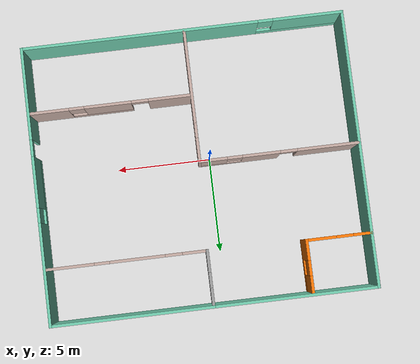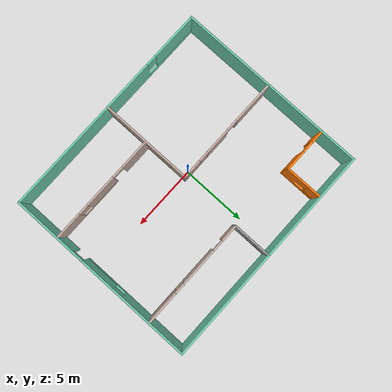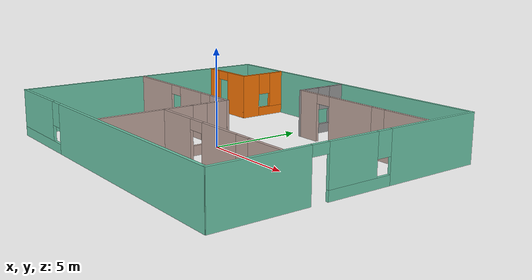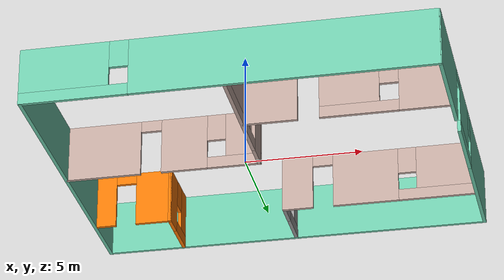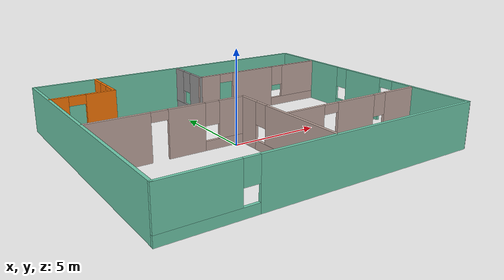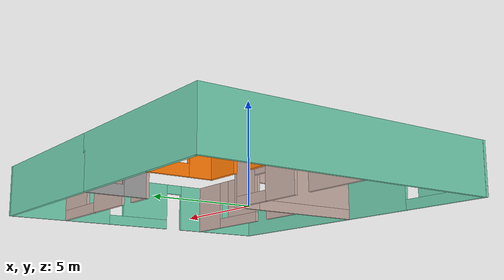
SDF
<?xml version='1.0'?>
<sdf version='1.6'>
  <model name='building'>
    <pose frame=''>0.669577 0.523003 0 0 -0 0</pose>
    <link name='Wall_0'>
      <collision name='Wall_0_Collision'>
        <geometry>
          <box>
            <size>14.75 0.15 2.5</size>
          </box>
        </geometry>
        <pose frame=''>0 0 1.25 0 -0 0</pose>
      </collision>
      <visual name='Wall_0_Visual'>
        <pose frame=''>0 0 1.25 0 -0 0</pose>
        <geometry>
          <box>
            <size>14.75 0.15 2.5</size>
          </box>
        </geometry>
        <material>
          <script>
            <uri>file://media/materials/scripts/gazebo.material</uri>
            <name>Gazebo/Grey</name>
          </script>
          <ambient>0.435294 0.796078 0.67451 1</ambient>
        </material>
        <meta>
          <layer>0</layer>
        </meta>
      </visual>
      <pose frame=''>-8.54234 0.004228 0 0 -0 1.5708</pose>
    </link>
    <link name='Wall_11'>
      <pose frame=''>4.23266 4.39423 0 0 -0 0</pose>
      <visual name='Wall_11_Visual_0'>
        <pose frame=''>-3.56356 0 1.25 0 -0 0</pose>
        <geometry>
          <box>
            <size>1.37289 0.15 2.5</size>
          </box>
        </geometry>
        <material>
          <script>
            <uri>file://media/materials/scripts/gazebo.material</uri>
            <name>Gazebo/Grey</name>
          </script>
          <ambient>0.760784 0.662745 0.627451 1</ambient>
        </material>
        <meta>
          <layer>0</layer>
        </meta>
      </visual>
      <collision name='Wall_11_Collision_0'>
        <geometry>
          <box>
            <size>1.37289 0.15 2.5</size>
          </box>
        </geometry>
        <pose frame=''>-3.56356 0 1.25 0 -0 0</pose>
      </collision>
      <visual name='Wall_11_Visual_1'>
        <pose frame=''>-0.527181 0 1.25 0 -0 0</pose>
        <geometry>
          <box>
            <size>2.89987 0.15 2.5</size>
          </box>
        </geometry>
        <material>
          <script>
            <uri>file://media/materials/scripts/gazebo.material</uri>
            <name>Gazebo/Grey</name>
          </script>
          <ambient>0.760784 0.662745 0.627451 1</ambient>
        </material>
        <meta>
          <layer>0</layer>
        </meta>
      </visual>
      <collision name='Wall_11_Collision_1'>
        <geometry>
          <box>
            <size>2.89987 0.15 2.5</size>
          </box>
        </geometry>
        <pose frame=''>-0.527181 0 1.25 0 -0 0</pose>
      </collision>
      <visual name='Wall_11_Visual_2'>
        <pose frame=''>2.58638 0 0.25 0 -0 0</pose>
        <geometry>
          <box>
            <size>3.32725 0.15 0.5</size>
          </box>
        </geometry>
        <material>
          <script>
            <uri>file://media/materials/scripts/gazebo.material</uri>
            <name>Gazebo/Grey</name>
          </script>
          <ambient>0.760784 0.662745 0.627451 1</ambient>
        </material>
        <meta>
          <layer>0</layer>
        </meta>
      </visual>
      <collision name='Wall_11_Collision_2'>
        <geometry>
          <box>
            <size>3.32725 0.15 0.5</size>
          </box>
        </geometry>
        <pose frame=''>2.58638 0 0.25 0 -0 0</pose>
      </collision>
      <visual name='Wall_11_Visual_3'>
        <pose frame=''>2.98638 0 1.5 0 -0 0</pose>
        <geometry>
          <box>
            <size>2.52725 0.15 2</size>
          </box>
        </geometry>
        <material>
          <script>
            <uri>file://media/materials/scripts/gazebo.material</uri>
            <name>Gazebo/Grey</name>
          </script>
          <ambient>0.760784 0.662745 0.627451 1</ambient>
        </material>
        <meta>
          <layer>0</layer>
        </meta>
      </visual>
      <collision name='Wall_11_Collision_3'>
        <geometry>
          <box>
            <size>2.52725 0.15 2</size>
          </box>
        </geometry>
        <pose frame=''>2.98638 0 1.5 0 -0 0</pose>
      </collision>
      <visual name='Wall_11_Visual_4'>
        <pose frame=''>1.32275 0 1.9 0 -0 0</pose>
        <geometry>
          <box>
            <size>0.8 0.15 1.2</size>
          </box>
        </geometry>
        <material>
          <script>
            <uri>file://media/materials/scripts/gazebo.material</uri>
            <name>Gazebo/Grey</name>
          </script>
          <ambient>0.760784 0.662745 0.627451 1</ambient>
        </material>
        <meta>
          <layer>0</layer>
        </meta>
      </visual>
      <collision name='Wall_11_Collision_4'>
        <geometry>
          <box>
            <size>0.8 0.15 1.2</size>
          </box>
        </geometry>
        <pose frame=''>1.32275 0 1.9 0 -0 0</pose>
      </collision>
      <visual name='Wall_11_Visual_5'>
        <pose frame=''>-2.42711 0 2.25 0 -0 0</pose>
        <geometry>
          <box>
            <size>0.9 0.15 0.5</size>
          </box>
        </geometry>
        <material>
          <script>
            <uri>file://media/materials/scripts/gazebo.material</uri>
            <name>Gazebo/Grey</name>
          </script>
          <ambient>0.760784 0.662745 0.627451 1</ambient>
        </material>
        <meta>
          <layer>0</layer>
        </meta>
      </visual>
      <collision name='Wall_11_Collision_5'>
        <geometry>
          <box>
            <size>0.9 0.15 0.5</size>
          </box>
        </geometry>
        <pose frame=''>-2.42711 0 2.25 0 -0 0</pose>
      </collision>
    </link>
    <link name='Wall_13'>
      <collision name='Wall_13_Collision'>
        <geometry>
          <box>
            <size>8.5 0.15 2.5</size>
          </box>
        </geometry>
        <pose frame=''>0 0 1.25 0 -0 0</pose>
      </collision>
      <visual name='Wall_13_Visual'>
        <pose frame=''>0 0 1.25 0 -0 0</pose>
        <geometry>
          <box>
            <size>8.5 0.15 2.5</size>
          </box>
        </geometry>
        <material>
          <script>
            <uri>file://media/materials/scripts/gazebo.material</uri>
            <name>Gazebo/Grey</name>
          </script>
          <ambient>0.435294 0.796078 0.67451 1</ambient>
        </material>
        <meta>
          <layer>0</layer>
        </meta>
      </visual>
      <pose frame=''>4.23266 7.30423 0 0 -0 0</pose>
    </link>
    <link name='Wall_15'>
      <pose frame=''>-4.28833 -0.269812 0 0 0 -4.6e-05</pose>
      <visual name='Wall_15_Visual_0'>
        <pose frame=''>-2.61857 0 1.25 0 -0 0</pose>
        <geometry>
          <box>
            <size>3.26287 0.15 2.5</size>
          </box>
        </geometry>
        <material>
          <script>
            <uri>file://media/materials/scripts/gazebo.material</uri>
            <name>Gazebo/Grey</name>
          </script>
          <ambient>0.760784 0.662745 0.627451 1</ambient>
        </material>
        <meta>
          <layer>0</layer>
        </meta>
      </visual>
      <collision name='Wall_15_Collision_0'>
        <geometry>
          <box>
            <size>3.26287 0.15 2.5</size>
          </box>
        </geometry>
        <pose frame=''>-2.61857 0 1.25 0 -0 0</pose>
      </collision>
      <visual name='Wall_15_Visual_1'>
        <pose frame=''>0.91749 0 1.25 0 -0 0</pose>
        <geometry>
          <box>
            <size>2.00924 0.15 2.5</size>
          </box>
        </geometry>
        <material>
          <script>
            <uri>file://media/materials/scripts/gazebo.material</uri>
            <name>Gazebo/Grey</name>
          </script>
          <ambient>0.760784 0.662745 0.627451 1</ambient>
        </material>
        <meta>
          <layer>0</layer>
        </meta>
      </visual>
      <collision name='Wall_15_Collision_1'>
        <geometry>
          <box>
            <size>2.00924 0.15 2.5</size>
          </box>
        </geometry>
        <pose frame=''>0.91749 0 1.25 0 -0 0</pose>
      </collision>
      <visual name='Wall_15_Visual_2'>
        <pose frame=''>3.08605 0 0.25 0 -0 0</pose>
        <geometry>
          <box>
            <size>2.32789 0.15 0.5</size>
          </box>
        </geometry>
        <material>
          <script>
            <uri>file://media/materials/scripts/gazebo.material</uri>
            <name>Gazebo/Grey</name>
          </script>
          <ambient>0.760784 0.662745 0.627451 1</ambient>
        </material>
        <meta>
          <layer>0</layer>
        </meta>
      </visual>
      <collision name='Wall_15_Collision_2'>
        <geometry>
          <box>
            <size>2.32789 0.15 0.5</size>
          </box>
        </geometry>
        <pose frame=''>3.08605 0 0.25 0 -0 0</pose>
      </collision>
      <visual name='Wall_15_Visual_3'>
        <pose frame=''>3.48605 0 1.5 0 -0 0</pose>
        <geometry>
          <box>
            <size>1.52789 0.15 2</size>
          </box>
        </geometry>
        <material>
          <script>
            <uri>file://media/materials/scripts/gazebo.material</uri>
            <name>Gazebo/Grey</name>
          </script>
          <ambient>0.760784 0.662745 0.627451 1</ambient>
        </material>
        <meta>
          <layer>0</layer>
        </meta>
      </visual>
      <collision name='Wall_15_Collision_3'>
        <geometry>
          <box>
            <size>1.52789 0.15 2</size>
          </box>
        </geometry>
        <pose frame=''>3.48605 0 1.5 0 -0 0</pose>
      </collision>
      <visual name='Wall_15_Visual_4'>
        <pose frame=''>2.32211 0 1.9 0 -0 0</pose>
        <geometry>
          <box>
            <size>0.8 0.15 1.2</size>
          </box>
        </geometry>
        <material>
          <script>
            <uri>file://media/materials/scripts/gazebo.material</uri>
            <name>Gazebo/Grey</name>
          </script>
          <ambient>0.760784 0.662745 0.627451 1</ambient>
        </material>
        <meta>
          <layer>0</layer>
        </meta>
      </visual>
      <collision name='Wall_15_Collision_4'>
        <geometry>
          <box>
            <size>0.8 0.15 1.2</size>
          </box>
        </geometry>
        <pose frame=''>2.32211 0 1.9 0 -0 0</pose>
      </collision>
      <visual name='Wall_15_Visual_5'>
        <pose frame=''>-0.537132 0 2.25 0 -0 0</pose>
        <geometry>
          <box>
            <size>0.9 0.15 0.5</size>
          </box>
        </geometry>
        <material>
          <script>
            <uri>file://media/materials/scripts/gazebo.material</uri>
            <name>Gazebo/Grey</name>
          </script>
          <ambient>0.760784 0.662745 0.627451 1</ambient>
        </material>
        <meta>
          <layer>0</layer>
        </meta>
      </visual>
      <collision name='Wall_15_Collision_5'>
        <geometry>
          <box>
            <size>0.9 0.15 0.5</size>
          </box>
        </geometry>
        <pose frame=''>-0.537132 0 2.25 0 -0 0</pose>
      </collision>
    </link>
    <link name='Wall_16'>
      <pose frame=''>-0.113577 -3.745 0 0 0 -1.5708</pose>
      <visual name='Wall_16_Visual_0'>
        <pose frame=''>-2.88983 0 1.25 0 -0 0</pose>
        <geometry>
          <box>
            <size>1.32035 0.15 2.5</size>
          </box>
        </geometry>
        <material>
          <script>
            <uri>file://media/materials/scripts/gazebo.material</uri>
            <name>Gazebo/Grey</name>
          </script>
          <ambient>0.760784 0.662745 0.627451 1</ambient>
        </material>
        <meta>
          <layer>0</layer>
        </meta>
      </visual>
      <collision name='Wall_16_Collision_0'>
        <geometry>
          <box>
            <size>1.32035 0.15 2.5</size>
          </box>
        </geometry>
        <pose frame=''>-2.88983 0 1.25 0 -0 0</pose>
      </collision>
      <visual name='Wall_16_Visual_1'>
        <pose frame=''>0.660174 0 0.25 0 -0 0</pose>
        <geometry>
          <box>
            <size>5.77965 0.15 0.5</size>
          </box>
        </geometry>
        <material>
          <script>
            <uri>file://media/materials/scripts/gazebo.material</uri>
            <name>Gazebo/Grey</name>
          </script>
          <ambient>0.760784 0.662745 0.627451 1</ambient>
        </material>
        <meta>
          <layer>0</layer>
        </meta>
      </visual>
      <collision name='Wall_16_Collision_1'>
        <geometry>
          <box>
            <size>5.77965 0.15 0.5</size>
          </box>
        </geometry>
        <pose frame=''>0.660174 0 0.25 0 -0 0</pose>
      </collision>
      <visual name='Wall_16_Visual_2'>
        <pose frame=''>1.06017 0 1.5 0 -0 0</pose>
        <geometry>
          <box>
            <size>4.97965 0.15 2</size>
          </box>
        </geometry>
        <material>
          <script>
            <uri>file://media/materials/scripts/gazebo.material</uri>
            <name>Gazebo/Grey</name>
          </script>
          <ambient>0.760784 0.662745 0.627451 1</ambient>
        </material>
        <meta>
          <layer>0</layer>
        </meta>
      </visual>
      <collision name='Wall_16_Collision_2'>
        <geometry>
          <box>
            <size>4.97965 0.15 2</size>
          </box>
        </geometry>
        <pose frame=''>1.06017 0 1.5 0 -0 0</pose>
      </collision>
      <visual name='Wall_16_Visual_3'>
        <pose frame=''>-1.82965 0 1.9 0 -0 0</pose>
        <geometry>
          <box>
            <size>0.8 0.15 1.2</size>
          </box>
        </geometry>
        <material>
          <script>
            <uri>file://media/materials/scripts/gazebo.material</uri>
            <name>Gazebo/Grey</name>
          </script>
          <ambient>0.760784 0.662745 0.627451 1</ambient>
        </material>
        <meta>
          <layer>0</layer>
        </meta>
      </visual>
      <collision name='Wall_16_Collision_3'>
        <geometry>
          <box>
            <size>0.8 0.15 1.2</size>
          </box>
        </geometry>
        <pose frame=''>-1.82965 0 1.9 0 -0 0</pose>
      </collision>
    </link>
    <link name='Wall_18'>
      <pose frame=''>4.19252 -3.81906 0 0 -0 3.14159</pose>
      <visual name='Wall_18_Visual_0'>
        <pose frame=''>-3.25532 0 1.25 0 -0 0</pose>
        <geometry>
          <box>
            <size>2.08936 0.15 2.5</size>
          </box>
        </geometry>
        <material>
          <script>
            <uri>file://media/materials/scripts/gazebo.material</uri>
            <name>Gazebo/Grey</name>
          </script>
          <ambient>0.760784 0.662745 0.627451 1</ambient>
        </material>
        <meta>
          <layer>0</layer>
        </meta>
      </visual>
      <collision name='Wall_18_Collision_0'>
        <geometry>
          <box>
            <size>2.08936 0.15 2.5</size>
          </box>
        </geometry>
        <pose frame=''>-3.25532 0 1.25 0 -0 0</pose>
      </collision>
      <visual name='Wall_18_Visual_1'>
        <pose frame=''>3.14264 0 1.25 0 -0 0</pose>
        <geometry>
          <box>
            <size>2.31472 0.15 2.5</size>
          </box>
        </geometry>
        <material>
          <script>
            <uri>file://media/materials/scripts/gazebo.material</uri>
            <name>Gazebo/Grey</name>
          </script>
          <ambient>0.760784 0.662745 0.627451 1</ambient>
        </material>
        <meta>
          <layer>0</layer>
        </meta>
      </visual>
      <collision name='Wall_18_Collision_1'>
        <geometry>
          <box>
            <size>2.31472 0.15 2.5</size>
          </box>
        </geometry>
        <pose frame=''>3.14264 0 1.25 0 -0 0</pose>
      </collision>
      <visual name='Wall_18_Visual_2'>
        <pose frame=''>-0.562678 0 0.25 0 -0 0</pose>
        <geometry>
          <box>
            <size>3.29592 0.15 0.5</size>
          </box>
        </geometry>
        <material>
          <script>
            <uri>file://media/materials/scripts/gazebo.material</uri>
            <name>Gazebo/Grey</name>
          </script>
          <ambient>0.760784 0.662745 0.627451 1</ambient>
        </material>
        <meta>
          <layer>0</layer>
        </meta>
      </visual>
      <collision name='Wall_18_Collision_2'>
        <geometry>
          <box>
            <size>3.29592 0.15 0.5</size>
          </box>
        </geometry>
        <pose frame=''>-0.562678 0 0.25 0 -0 0</pose>
      </collision>
      <visual name='Wall_18_Visual_3'>
        <pose frame=''>-0.162678 0 1.5 0 -0 0</pose>
        <geometry>
          <box>
            <size>2.49593 0.15 2</size>
          </box>
        </geometry>
        <material>
          <script>
            <uri>file://media/materials/scripts/gazebo.material</uri>
            <name>Gazebo/Grey</name>
          </script>
          <ambient>0.760784 0.662745 0.627451 1</ambient>
        </material>
        <meta>
          <layer>0</layer>
        </meta>
      </visual>
      <collision name='Wall_18_Collision_3'>
        <geometry>
          <box>
            <size>2.49593 0.15 2</size>
          </box>
        </geometry>
        <pose frame=''>-0.162678 0 1.5 0 -0 0</pose>
      </collision>
      <visual name='Wall_18_Visual_4'>
        <pose frame=''>-1.81064 0 1.9 0 -0 0</pose>
        <geometry>
          <box>
            <size>0.8 0.15 1.2</size>
          </box>
        </geometry>
        <material>
          <script>
            <uri>file://media/materials/scripts/gazebo.material</uri>
            <name>Gazebo/Grey</name>
          </script>
          <ambient>0.760784 0.662745 0.627451 1</ambient>
        </material>
        <meta>
          <layer>0</layer>
        </meta>
      </visual>
      <collision name='Wall_18_Collision_4'>
        <geometry>
          <box>
            <size>0.8 0.15 1.2</size>
          </box>
        </geometry>
        <pose frame=''>-1.81064 0 1.9 0 -0 0</pose>
      </collision>
      <visual name='Wall_18_Visual_5'>
        <pose frame=''>1.53528 0 2.25 0 -0 0</pose>
        <geometry>
          <box>
            <size>0.9 0.15 0.5</size>
          </box>
        </geometry>
        <material>
          <script>
            <uri>file://media/materials/scripts/gazebo.material</uri>
            <name>Gazebo/Grey</name>
          </script>
          <ambient>0.760784 0.662745 0.627451 1</ambient>
        </material>
        <meta>
          <layer>0</layer>
        </meta>
      </visual>
      <collision name='Wall_18_Collision_5'>
        <geometry>
          <box>
            <size>0.9 0.15 0.5</size>
          </box>
        </geometry>
        <pose frame=''>1.53528 0 2.25 0 -0 0</pose>
      </collision>
    </link>
    <link name='Wall_2'>
      <pose frame=''>8.54758 0.007002 0 0 0 -1.5708</pose>
      <visual name='Wall_2_Visual_0'>
        <pose frame=''>-4.65754 0 1.25 0 -0 0</pose>
        <geometry>
          <box>
            <size>5.43493 0.15 2.5</size>
          </box>
        </geometry>
        <material>
          <script>
            <uri>file://media/materials/scripts/gazebo.material</uri>
            <name>Gazebo/Grey</name>
          </script>
          <ambient>0.435294 0.796078 0.67451 1</ambient>
        </material>
        <meta>
          <layer>0</layer>
        </meta>
      </visual>
      <collision name='Wall_2_Collision_0'>
        <geometry>
          <box>
            <size>5.43493 0.15 2.5</size>
          </box>
        </geometry>
        <pose frame=''>-4.65754 0 1.25 0 -0 0</pose>
      </collision>
      <visual name='Wall_2_Visual_1'>
        <pose frame=''>4.92366 0 1.25 0 -0 0</pose>
        <geometry>
          <box>
            <size>4.90268 0.15 2.5</size>
          </box>
        </geometry>
        <material>
          <script>
            <uri>file://media/materials/scripts/gazebo.material</uri>
            <name>Gazebo/Grey</name>
          </script>
          <ambient>0.435294 0.796078 0.67451 1</ambient>
        </material>
        <meta>
          <layer>0</layer>
        </meta>
      </visual>
      <collision name='Wall_2_Collision_1'>
        <geometry>
          <box>
            <size>4.90268 0.15 2.5</size>
          </box>
        </geometry>
        <pose frame=''>4.92366 0 1.25 0 -0 0</pose>
      </collision>
      <visual name='Wall_2_Visual_2'>
        <pose frame=''>-0.183873 0 0.25 0 -0 0</pose>
        <geometry>
          <box>
            <size>3.51239 0.15 0.5</size>
          </box>
        </geometry>
        <material>
          <script>
            <uri>file://media/materials/scripts/gazebo.material</uri>
            <name>Gazebo/Grey</name>
          </script>
          <ambient>0.435294 0.796078 0.67451 1</ambient>
        </material>
        <meta>
          <layer>0</layer>
        </meta>
      </visual>
      <collision name='Wall_2_Collision_2'>
        <geometry>
          <box>
            <size>3.51239 0.15 0.5</size>
          </box>
        </geometry>
        <pose frame=''>-0.183873 0 0.25 0 -0 0</pose>
      </collision>
      <visual name='Wall_2_Visual_3'>
        <pose frame=''>0.216127 0 1.5 0 -0 0</pose>
        <geometry>
          <box>
            <size>2.71239 0.15 2</size>
          </box>
        </geometry>
        <material>
          <script>
            <uri>file://media/materials/scripts/gazebo.material</uri>
            <name>Gazebo/Grey</name>
          </script>
          <ambient>0.435294 0.796078 0.67451 1</ambient>
        </material>
        <meta>
          <layer>0</layer>
        </meta>
      </visual>
      <collision name='Wall_2_Collision_3'>
        <geometry>
          <box>
            <size>2.71239 0.15 2</size>
          </box>
        </geometry>
        <pose frame=''>0.216127 0 1.5 0 -0 0</pose>
      </collision>
      <visual name='Wall_2_Visual_4'>
        <pose frame=''>-1.54007 0 1.9 0 -0 0</pose>
        <geometry>
          <box>
            <size>0.8 0.15 1.2</size>
          </box>
        </geometry>
        <material>
          <script>
            <uri>file://media/materials/scripts/gazebo.material</uri>
            <name>Gazebo/Grey</name>
          </script>
          <ambient>0.435294 0.796078 0.67451 1</ambient>
        </material>
        <meta>
          <layer>0</layer>
        </meta>
      </visual>
      <collision name='Wall_2_Collision_4'>
        <geometry>
          <box>
            <size>0.8 0.15 1.2</size>
          </box>
        </geometry>
        <pose frame=''>-1.54007 0 1.9 0 -0 0</pose>
      </collision>
      <visual name='Wall_2_Visual_5'>
        <pose frame=''>2.02232 0 2.25 0 -0 0</pose>
        <geometry>
          <box>
            <size>0.9 0.15 0.5</size>
          </box>
        </geometry>
        <material>
          <script>
            <uri>file://media/materials/scripts/gazebo.material</uri>
            <name>Gazebo/Grey</name>
          </script>
          <ambient>0.435294 0.796078 0.67451 1</ambient>
        </material>
        <meta>
          <layer>0</layer>
        </meta>
      </visual>
      <collision name='Wall_2_Collision_5'>
        <geometry>
          <box>
            <size>0.9 0.15 0.5</size>
          </box>
        </geometry>
        <pose frame=''>2.02232 0 2.25 0 -0 0</pose>
      </collision>
    </link>
    <link name='Wall_20'>
      <pose frame=''>-6.81011 4.48629 0 0 -0 0</pose>
      <visual name='Wall_20_Visual_0'>
        <pose frame=''>-1.26355 0 1.25 0 -0 0</pose>
        <geometry>
          <box>
            <size>0.972906 0.15 2.5</size>
          </box>
        </geometry>
        <material>
          <script>
            <uri>file://media/materials/scripts/gazebo.material</uri>
            <name>Gazebo/Grey</name>
          </script>
          <ambient>0.996078 0.47451 0.0196078 1</ambient>
        </material>
        <meta>
          <layer>0</layer>
        </meta>
      </visual>
      <collision name='Wall_20_Collision_0'>
        <geometry>
          <box>
            <size>0.972906 0.15 2.5</size>
          </box>
        </geometry>
        <pose frame=''>-1.26355 0 1.25 0 -0 0</pose>
      </collision>
      <visual name='Wall_20_Visual_1'>
        <pose frame=''>0.936453 0 1.25 0 -0 0</pose>
        <geometry>
          <box>
            <size>1.62709 0.15 2.5</size>
          </box>
        </geometry>
        <material>
          <script>
            <uri>file://media/materials/scripts/gazebo.material</uri>
            <name>Gazebo/Grey</name>
          </script>
          <ambient>0.996078 0.47451 0.0196078 1</ambient>
        </material>
        <meta>
          <layer>0</layer>
        </meta>
      </visual>
      <collision name='Wall_20_Collision_1'>
        <geometry>
          <box>
            <size>1.62709 0.15 2.5</size>
          </box>
        </geometry>
        <pose frame=''>0.936453 0 1.25 0 -0 0</pose>
      </collision>
      <visual name='Wall_20_Visual_2'>
        <pose frame=''>-0.327094 0 2.25 0 -0 0</pose>
        <geometry>
          <box>
            <size>0.9 0.15 0.5</size>
          </box>
        </geometry>
        <material>
          <script>
            <uri>file://media/materials/scripts/gazebo.material</uri>
            <name>Gazebo/Grey</name>
          </script>
          <ambient>0.996078 0.47451 0.0196078 1</ambient>
        </material>
        <meta>
          <layer>0</layer>
        </meta>
      </visual>
      <collision name='Wall_20_Collision_2'>
        <geometry>
          <box>
            <size>0.9 0.15 0.5</size>
          </box>
        </geometry>
        <pose frame=''>-0.327094 0 2.25 0 -0 0</pose>
      </collision>
    </link>
    <link name='Wall_21'>
      <pose frame=''>-5.13511 5.86129 0 0 -0 1.5708</pose>
      <visual name='Wall_21_Visual_0'>
        <pose frame=''>-0.89205 0 1.25 0 -0 0</pose>
        <geometry>
          <box>
            <size>1.1159 0.15 2.5</size>
          </box>
        </geometry>
        <material>
          <script>
            <uri>file://media/materials/scripts/gazebo.material</uri>
            <name>Gazebo/Grey</name>
          </script>
          <ambient>0.996078 0.47451 0.0196078 1</ambient>
        </material>
        <meta>
          <layer>0</layer>
        </meta>
      </visual>
      <collision name='Wall_21_Collision_0'>
        <geometry>
          <box>
            <size>1.1159 0.15 2.5</size>
          </box>
        </geometry>
        <pose frame=''>-0.89205 0 1.25 0 -0 0</pose>
      </collision>
      <visual name='Wall_21_Visual_1'>
        <pose frame=''>0.55795 0 0.25 0 -0 0</pose>
        <geometry>
          <box>
            <size>1.7841 0.15 0.5</size>
          </box>
        </geometry>
        <material>
          <script>
            <uri>file://media/materials/scripts/gazebo.material</uri>
            <name>Gazebo/Grey</name>
          </script>
          <ambient>0.996078 0.47451 0.0196078 1</ambient>
        </material>
        <meta>
          <layer>0</layer>
        </meta>
      </visual>
      <collision name='Wall_21_Collision_1'>
        <geometry>
          <box>
            <size>1.7841 0.15 0.5</size>
          </box>
        </geometry>
        <pose frame=''>0.55795 0 0.25 0 -0 0</pose>
      </collision>
      <visual name='Wall_21_Visual_2'>
        <pose frame=''>0.95795 0 1.5 0 -0 0</pose>
        <geometry>
          <box>
            <size>0.9841 0.15 2</size>
          </box>
        </geometry>
        <material>
          <script>
            <uri>file://media/materials/scripts/gazebo.material</uri>
            <name>Gazebo/Grey</name>
          </script>
          <ambient>0.996078 0.47451 0.0196078 1</ambient>
        </material>
        <meta>
          <layer>0</layer>
        </meta>
      </visual>
      <collision name='Wall_21_Collision_2'>
        <geometry>
          <box>
            <size>0.9841 0.15 2</size>
          </box>
        </geometry>
        <pose frame=''>0.95795 0 1.5 0 -0 0</pose>
      </collision>
      <visual name='Wall_21_Visual_3'>
        <pose frame=''>0.0659 0 1.9 0 -0 0</pose>
        <geometry>
          <box>
            <size>0.8 0.15 1.2</size>
          </box>
        </geometry>
        <material>
          <script>
            <uri>file://media/materials/scripts/gazebo.material</uri>
            <name>Gazebo/Grey</name>
          </script>
          <ambient>0.996078 0.47451 0.0196078 1</ambient>
        </material>
        <meta>
          <layer>0</layer>
        </meta>
      </visual>
      <collision name='Wall_21_Collision_3'>
        <geometry>
          <box>
            <size>0.8 0.15 1.2</size>
          </box>
        </geometry>
        <pose frame=''>0.0659 0 1.9 0 -0 0</pose>
      </collision>
    </link>
    <link name='Wall_24'>
      <pose frame=''>0.057659 5.84923 0 0 -0 1.5708</pose>
      <visual name='Wall_24_Visual_0'>
        <pose frame=''>-0.929516 0 1.25 0 -0 0</pose>
        <geometry>
          <box>
            <size>1.20097 0.15 2.5</size>
          </box>
        </geometry>
        <material>
          <script>
            <uri>file://media/materials/scripts/gazebo.material</uri>
            <name>Gazebo/Grey</name>
          </script>
          <ambient>1 1 1 1</ambient>
        </material>
        <meta>
          <layer>0</layer>
        </meta>
      </visual>
      <collision name='Wall_24_Collision_0'>
        <geometry>
          <box>
            <size>1.20097 0.15 2.5</size>
          </box>
        </geometry>
        <pose frame=''>-0.929516 0 1.25 0 -0 0</pose>
      </collision>
      <visual name='Wall_24_Visual_1'>
        <pose frame=''>0.600484 0 0.25 0 -0 0</pose>
        <geometry>
          <box>
            <size>1.85903 0.15 0.5</size>
          </box>
        </geometry>
        <material>
          <script>
            <uri>file://media/materials/scripts/gazebo.material</uri>
            <name>Gazebo/Grey</name>
          </script>
          <ambient>1 1 1 1</ambient>
        </material>
        <meta>
          <layer>0</layer>
        </meta>
      </visual>
      <collision name='Wall_24_Collision_1'>
        <geometry>
          <box>
            <size>1.85903 0.15 0.5</size>
          </box>
        </geometry>
        <pose frame=''>0.600484 0 0.25 0 -0 0</pose>
      </collision>
      <visual name='Wall_24_Visual_2'>
        <pose frame=''>1.00048 0 1.5 0 -0 0</pose>
        <geometry>
          <box>
            <size>1.05903 0.15 2</size>
          </box>
        </geometry>
        <material>
          <script>
            <uri>file://media/materials/scripts/gazebo.material</uri>
            <name>Gazebo/Grey</name>
          </script>
          <ambient>1 1 1 1</ambient>
        </material>
        <meta>
          <layer>0</layer>
        </meta>
      </visual>
      <collision name='Wall_24_Collision_2'>
        <geometry>
          <box>
            <size>1.05903 0.15 2</size>
          </box>
        </geometry>
        <pose frame=''>1.00048 0 1.5 0 -0 0</pose>
      </collision>
      <visual name='Wall_24_Visual_3'>
        <pose frame=''>0.070969 0 1.9 0 -0 0</pose>
        <geometry>
          <box>
            <size>0.8 0.15 1.2</size>
          </box>
        </geometry>
        <material>
          <script>
            <uri>file://media/materials/scripts/gazebo.material</uri>
            <name>Gazebo/Grey</name>
          </script>
          <ambient>1 1 1 1</ambient>
        </material>
        <meta>
          <layer>0</layer>
        </meta>
      </visual>
      <collision name='Wall_24_Collision_3'>
        <geometry>
          <box>
            <size>0.8 0.15 1.2</size>
          </box>
        </geometry>
        <pose frame=''>0.070969 0 1.9 0 -0 0</pose>
      </collision>
    </link>
    <link name='Wall_7'>
      <pose frame=''>-0.022577 -7.307 0 0 -0 3.14159</pose>
      <visual name='Wall_7_Visual_0'>
        <pose frame=''>-2.28106 0 1.25 0 -0 0</pose>
        <geometry>
          <box>
            <size>12.6379 0.15 2.5</size>
          </box>
        </geometry>
        <material>
          <script>
            <uri>file://media/materials/scripts/gazebo.material</uri>
            <name>Gazebo/Grey</name>
          </script>
          <ambient>0.435294 0.796078 0.67451 1</ambient>
        </material>
        <meta>
          <layer>0</layer>
        </meta>
      </visual>
      <collision name='Wall_7_Collision_0'>
        <geometry>
          <box>
            <size>12.6379 0.15 2.5</size>
          </box>
        </geometry>
        <pose frame=''>-2.28106 0 1.25 0 -0 0</pose>
      </collision>
      <visual name='Wall_7_Visual_1'>
        <pose frame=''>6.31894 0 0.25 0 -0 0</pose>
        <geometry>
          <box>
            <size>4.56212 0.15 0.5</size>
          </box>
        </geometry>
        <material>
          <script>
            <uri>file://media/materials/scripts/gazebo.material</uri>
            <name>Gazebo/Grey</name>
          </script>
          <ambient>0.435294 0.796078 0.67451 1</ambient>
        </material>
        <meta>
          <layer>0</layer>
        </meta>
      </visual>
      <collision name='Wall_7_Collision_1'>
        <geometry>
          <box>
            <size>4.56212 0.15 0.5</size>
          </box>
        </geometry>
        <pose frame=''>6.31894 0 0.25 0 -0 0</pose>
      </collision>
      <visual name='Wall_7_Visual_2'>
        <pose frame=''>6.71894 0 1.5 0 -0 0</pose>
        <geometry>
          <box>
            <size>3.76212 0.15 2</size>
          </box>
        </geometry>
        <material>
          <script>
            <uri>file://media/materials/scripts/gazebo.material</uri>
            <name>Gazebo/Grey</name>
          </script>
          <ambient>0.435294 0.796078 0.67451 1</ambient>
        </material>
        <meta>
          <layer>0</layer>
        </meta>
      </visual>
      <collision name='Wall_7_Collision_2'>
        <geometry>
          <box>
            <size>3.76212 0.15 2</size>
          </box>
        </geometry>
        <pose frame=''>6.71894 0 1.5 0 -0 0</pose>
      </collision>
      <visual name='Wall_7_Visual_3'>
        <pose frame=''>4.43788 0 1.9 0 -0 0</pose>
        <geometry>
          <box>
            <size>0.8 0.15 1.2</size>
          </box>
        </geometry>
        <material>
          <script>
            <uri>file://media/materials/scripts/gazebo.material</uri>
            <name>Gazebo/Grey</name>
          </script>
          <ambient>0.435294 0.796078 0.67451 1</ambient>
        </material>
        <meta>
          <layer>0</layer>
        </meta>
      </visual>
      <collision name='Wall_7_Collision_3'>
        <geometry>
          <box>
            <size>0.8 0.15 1.2</size>
          </box>
        </geometry>
        <pose frame=''>4.43788 0 1.9 0 -0 0</pose>
      </collision>
    </link>
    <link name='Wall_9'>
      <collision name='Wall_9_Collision'>
        <geometry>
          <box>
            <size>8.75 0.15 2.5</size>
          </box>
        </geometry>
        <pose frame=''>0 0 1.25 0 -0 0</pose>
      </collision>
      <visual name='Wall_9_Visual'>
        <pose frame=''>0 0 1.25 0 -0 0</pose>
        <geometry>
          <box>
            <size>8.75 0.15 2.5</size>
          </box>
        </geometry>
        <material>
          <script>
            <uri>file://media/materials/scripts/gazebo.material</uri>
            <name>Gazebo/Grey</name>
          </script>
          <ambient>0.435294 0.796078 0.67451 1</ambient>
        </material>
        <meta>
          <layer>0</layer>
        </meta>
      </visual>
      <pose frame=''>-4.24234 7.30423 0 0 -0 0</pose>
    </link>
    <static>1</static>
  </model>
</sdf>
